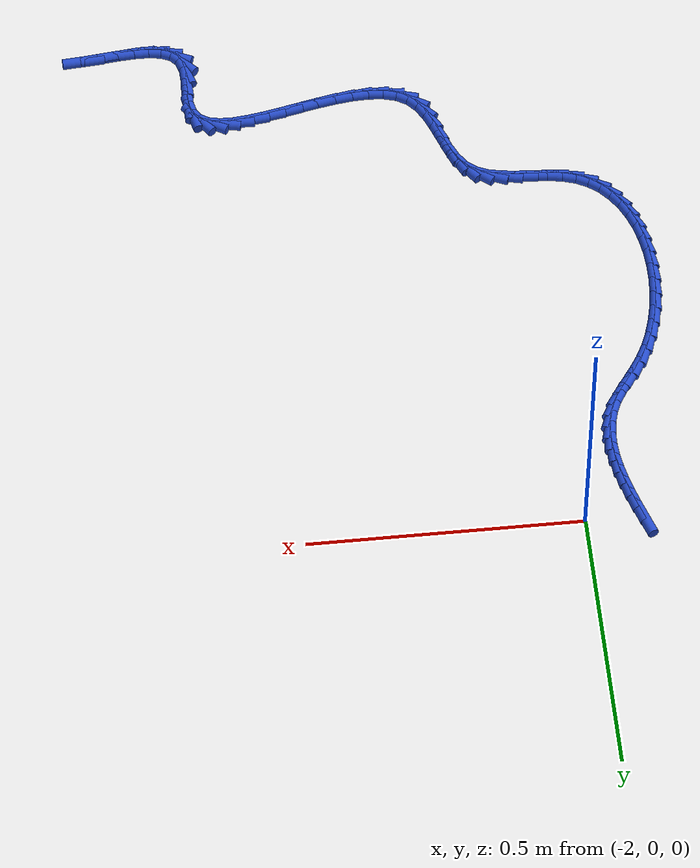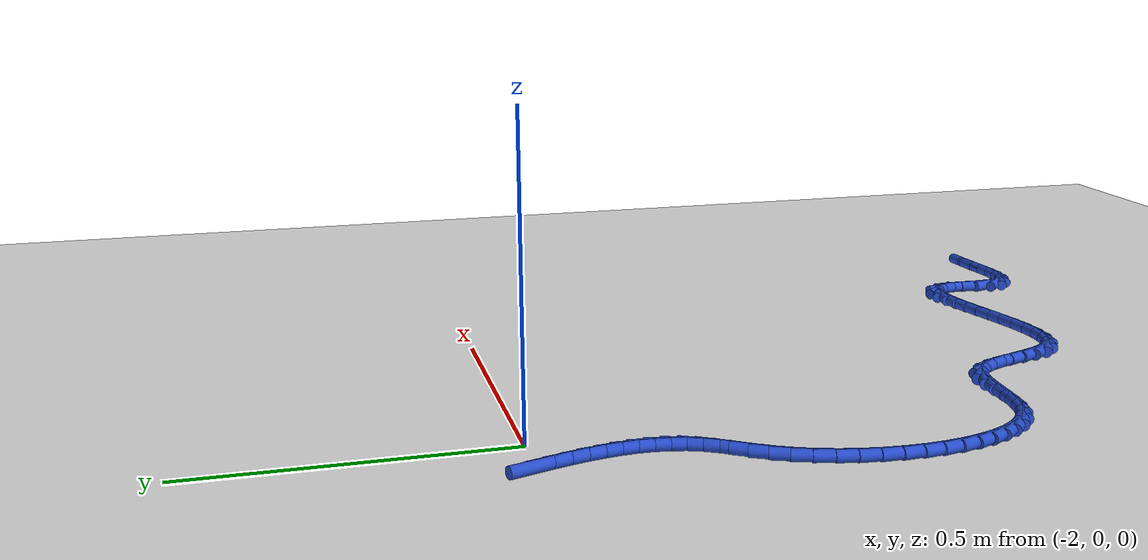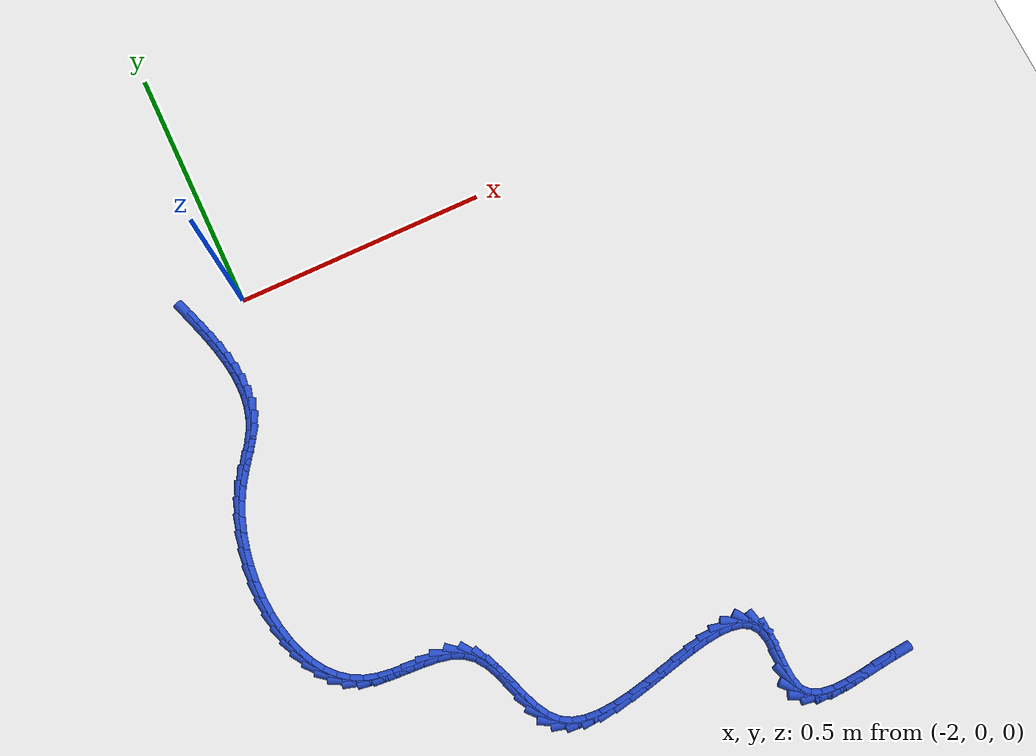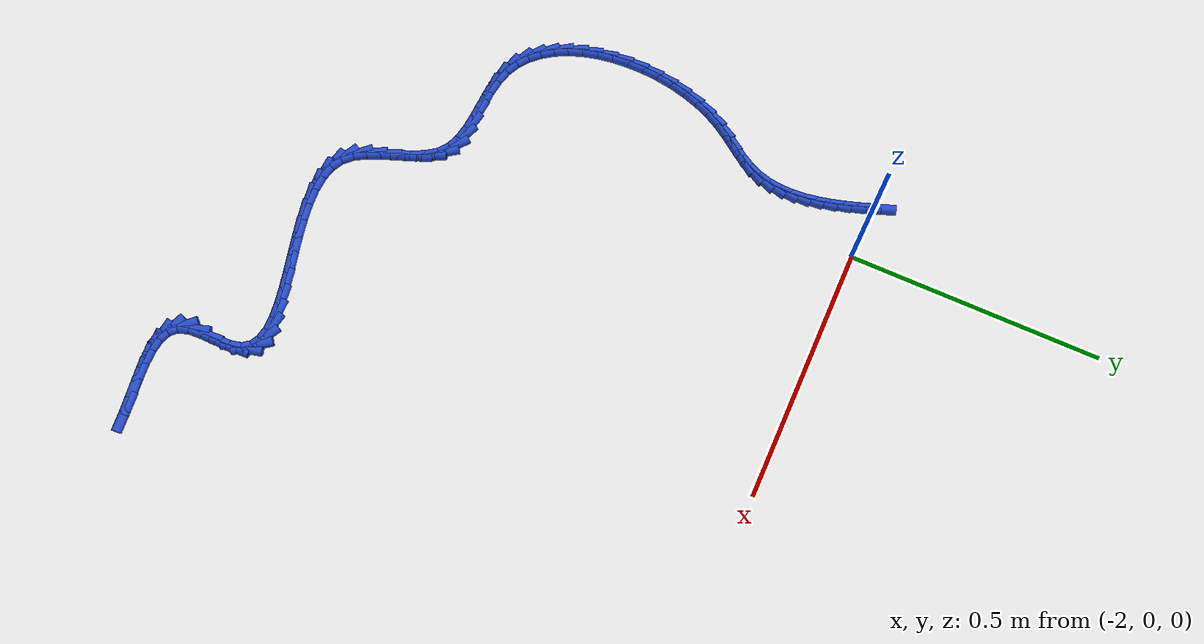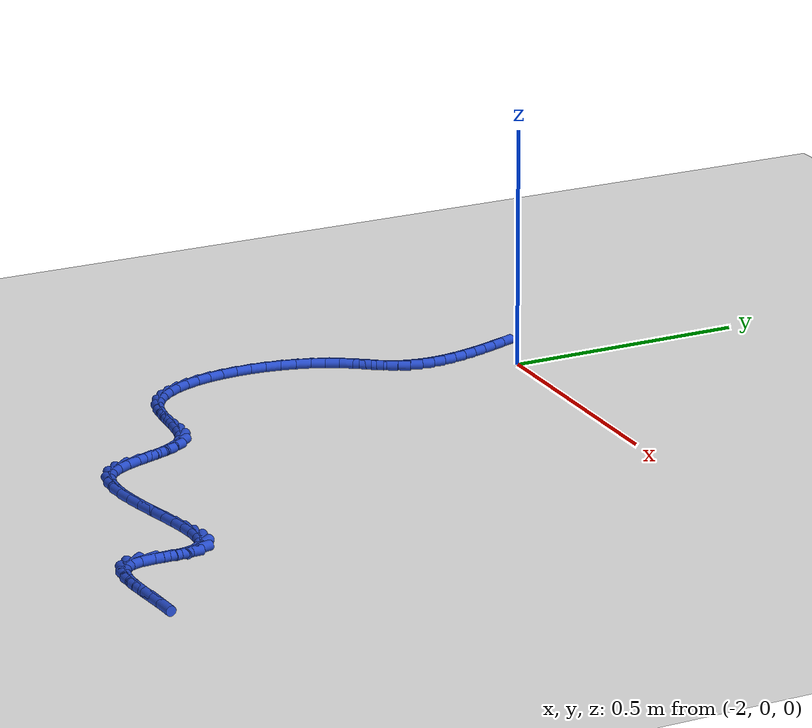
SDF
<sdf version="1.6">
 <world name="default">
  <model name="ground_plane">
   <static>1</static>
   <link name="link">
    <collision name="collision">
     <geometry><plane><normal>0 0 1</normal><size>100 100</size></plane></geometry>
     <surface><friction><ode><mu>100</mu><mu2>50</mu2></ode></friction></surface>
    </collision>
    <visual name="visual">
     <cast_shadows>0</cast_shadows>
     <geometry><plane><normal>0 0 1</normal><size>100 100</size></plane></geometry>
     <material>
      <script><uri>file://media/materials/scripts/gazebo.material</uri><name>Gazebo/WhiteGlow</name></script>
     </material>
    </visual>
   </link>
  </model>
  <model name="line">
   <link name="link_147">
    <pose>-2.103485461184262 0.0067950459913509965 0.01 0 1.57 -1.245817069460105</pose>
    <collision name="collision">
     <geometry><cylinder><radius>0.01</radius><length>0.08</length></cylinder></geometry>
    </collision>
    <visual name="visual">
     <material>
      <script><name>Gazebo/Blue</name><uri>file://media/materials/scripts/gazebo.material</uri></script>
     </material>
     <geometry><cylinder><radius>0.01</radius><length>0.08</length></cylinder></geometry>
    </visual>
   </link>
   <link name="link_148">
    <pose>-2.0942054478189482 -0.020748243369155435 0.01 0 1.57 -1.2718352223715492</pose>
    <collision name="collision">
     <geometry><cylinder><radius>0.01</radius><length>0.08</length></cylinder></geometry>
    </collision>
    <visual name="visual">
     <material>
      <script><name>Gazebo/Blue</name><uri>file://media/materials/scripts/gazebo.material</uri></script>
     </material>
     <geometry><cylinder><radius>0.01</radius><length>0.08</length></cylinder></geometry>
    </visual>
   </link>
   <link name="link_149">
    <pose>-2.0858336120348455 -0.04791203873200592 0.01 0 1.57 -1.3085235844850125</pose>
    <collision name="collision">
     <geometry><cylinder><radius>0.01</radius><length>0.08</length></cylinder></geometry>
    </collision>
    <visual name="visual">
     <material>
      <script><name>Gazebo/Blue</name><uri>file://media/materials/scripts/gazebo.material</uri></script>
     </material>
     <geometry><cylinder><radius>0.01</radius><length>0.08</length></cylinder></geometry>
    </visual>
   </link>
   <link name="link_150">
    <pose>-2.0786564714903086 -0.07464686526933204 0.01 0 1.57 -1.357171425639478</pose>
    <collision name="collision">
     <geometry><cylinder><radius>0.01</radius><length>0.08</length></cylinder></geometry>
    </collision>
    <visual name="visual">
     <material>
      <script><name>Gazebo/Blue</name><uri>file://media/materials/scripts/gazebo.material</uri></script>
     </material>
     <geometry><cylinder><radius>0.01</radius><length>0.08</length></cylinder></geometry>
    </visual>
   </link>
   <link name="link_151">
    <pose>-2.0729605438436915 -0.10090324815326539 0.01 0 1.57 -1.4192873323787267</pose>
    <collision name="collision">
     <geometry><cylinder><radius>0.01</radius><length>0.08</length></cylinder></geometry>
    </collision>
    <visual name="visual">
     <material>
      <script><name>Gazebo/Blue</name><uri>file://media/materials/scripts/gazebo.material</uri></script>
     </material>
     <geometry><cylinder><radius>0.01</radius><length>0.08</length></cylinder></geometry>
    </visual>
   </link>
   <link name="link_152">
    <pose>-2.069032346753349 -0.12663171255593683 0.01 0 1.57 -1.4964260268732787</pose>
    <collision name="collision">
     <geometry><cylinder><radius>0.01</radius><length>0.08</length></cylinder></geometry>
    </collision>
    <visual name="visual">
     <material>
      <script><name>Gazebo/Blue</name><uri>file://media/materials/scripts/gazebo.material</uri></script>
     </material>
     <geometry><cylinder><radius>0.01</radius><length>0.08</length></cylinder></geometry>
    </visual>
   </link>
   <link name="link_153">
    <pose>-2.067158397877636 -0.15178278364947959 0.01 0 1.57 1.551763674445263</pose>
    <collision name="collision">
     <geometry><cylinder><radius>0.01</radius><length>0.08</length></cylinder></geometry>
    </collision>
    <visual name="visual">
     <material>
      <script><name>Gazebo/Blue</name><uri>file://media/materials/scripts/gazebo.material</uri></script>
     </material>
     <geometry><cylinder><radius>0.01</radius><length>0.08</length></cylinder></geometry>
    </visual>
   </link>
   <link name="link_154">
    <pose>-2.067625214874906 -0.1763069866060244 0.01 0 1.57 1.4417737452906738</pose>
    <collision name="collision">
     <geometry><cylinder><radius>0.01</radius><length>0.08</length></cylinder></geometry>
    </collision>
    <visual name="visual">
     <material>
      <script><name>Gazebo/Blue</name><uri>file://media/materials/scripts/gazebo.material</uri></script>
     </material>
     <geometry><cylinder><radius>0.01</radius><length>0.08</length></cylinder></geometry>
    </visual>
   </link>
   <link name="link_155">
    <pose>-2.0707193154035135 -0.20015484659770294 0.01 0 1.57 1.3165833986257338</pose>
    <collision name="collision">
     <geometry><cylinder><radius>0.01</radius><length>0.08</length></cylinder></geometry>
    </collision>
    <visual name="visual">
     <material>
      <script><name>Gazebo/Blue</name><uri>file://media/materials/scripts/gazebo.material</uri></script>
     </material>
     <geometry><cylinder><radius>0.01</radius><length>0.08</length></cylinder></geometry>
    </visual>
   </link>
   <link name="link_156">
    <pose>-2.0767272171218143 -0.22327688879664676 0.01 0 1.57 1.1799360997999613</pose>
    <collision name="collision">
     <geometry><cylinder><radius>0.01</radius><length>0.08</length></cylinder></geometry>
    </collision>
    <visual name="visual">
     <material>
      <script><name>Gazebo/Blue</name><uri>file://media/materials/scripts/gazebo.material</uri></script>
     </material>
     <geometry><cylinder><radius>0.01</radius><length>0.08</length></cylinder></geometry>
    </visual>
   </link>
   <link name="link_157">
    <pose>-2.0859354376881614 -0.24562363837498752 0.01 0 1.57 1.0484567349800722</pose>
    <collision name="collision">
     <geometry><cylinder><radius>0.01</radius><length>0.08</length></cylinder></geometry>
    </collision>
    <visual name="visual">
     <material>
      <script><name>Gazebo/Blue</name><uri>file://media/materials/scripts/gazebo.material</uri></script>
     </material>
     <geometry><cylinder><radius>0.01</radius><length>0.08</length></cylinder></geometry>
    </visual>
   </link>
   <link name="link_158">
    <pose>-2.0983946030037415 -0.26726643643316855 0.01 0 1.57 0.9725468085613582</pose>
    <collision name="collision">
     <geometry><cylinder><radius>0.01</radius><length>0.08</length></cylinder></geometry>
    </collision>
    <visual name="visual">
     <material>
      <script><name>Gazebo/Blue</name><uri>file://media/materials/scripts/gazebo.material</uri></script>
     </material>
     <geometry><cylinder><radius>0.01</radius><length>0.08</length></cylinder></geometry>
    </visual>
   </link>
   <link name="link_159">
    <pose>-2.113087334901353 -0.28882362030631203 0.01 0 1.57 0.9589980313045741</pose>
    <collision name="collision">
     <geometry><cylinder><radius>0.01</radius><length>0.08</length></cylinder></geometry>
    </collision>
    <visual name="visual">
     <material>
      <script><name>Gazebo/Blue</name><uri>file://media/materials/scripts/gazebo.material</uri></script>
     </material>
     <geometry><cylinder><radius>0.01</radius><length>0.08</length></cylinder></geometry>
    </visual>
   </link>
   <link name="link_160">
    <pose>-2.1286941486754767 -0.3110682562709591 0.01 0 1.57 1.0005832384589313</pose>
    <collision name="collision">
     <geometry><cylinder><radius>0.01</radius><length>0.08</length></cylinder></geometry>
    </collision>
    <visual name="visual">
     <material>
      <script><name>Gazebo/Blue</name><uri>file://media/materials/scripts/gazebo.material</uri></script>
     </material>
     <geometry><cylinder><radius>0.01</radius><length>0.08</length></cylinder></geometry>
    </visual>
   </link>
   <link name="link_161">
    <pose>-2.1438955408295697 -0.33477342022778706 0.01 0 1.57 1.0881705349579678</pose>
    <collision name="collision">
     <geometry><cylinder><radius>0.01</radius><length>0.08</length></cylinder></geometry>
    </collision>
    <visual name="visual">
     <material>
      <script><name>Gazebo/Blue</name><uri>file://media/materials/scripts/gazebo.material</uri></script>
     </material>
     <geometry><cylinder><radius>0.01</radius><length>0.08</length></cylinder></geometry>
    </visual>
   </link>
   <link name="link_162">
    <pose>-2.1574482748450445 -0.36063974166752943 0.01 0 1.57 1.183612582332133</pose>
    <collision name="collision">
     <geometry><cylinder><radius>0.01</radius><length>0.08</length></cylinder></geometry>
    </collision>
    <visual name="visual">
     <material>
      <script><name>Gazebo/Blue</name><uri>file://media/materials/scripts/gazebo.material</uri></script>
     </material>
     <geometry><cylinder><radius>0.01</radius><length>0.08</length></cylinder></geometry>
    </visual>
   </link>
   <link name="link_163">
    <pose>-2.1688684984520044 -0.3886465069247734 0.01 0 1.57 1.2693158005675775</pose>
    <collision name="collision">
     <geometry><cylinder><radius>0.01</radius><length>0.08</length></cylinder></geometry>
    </collision>
    <visual name="visual">
     <material>
      <script><name>Gazebo/Blue</name><uri>file://media/materials/scripts/gazebo.material</uri></script>
     </material>
     <geometry><cylinder><radius>0.01</radius><length>0.08</length></cylinder></geometry>
    </visual>
   </link>
   <link name="link_164">
    <pose>-2.178107945005088 -0.4183592372214941 0.01 0 1.57 1.348092796050872</pose>
    <collision name="collision">
     <geometry><cylinder><radius>0.01</radius><length>0.08</length></cylinder></geometry>
    </collision>
    <visual name="visual">
     <material>
      <script><name>Gazebo/Blue</name><uri>file://media/materials/scripts/gazebo.material</uri></script>
     </material>
     <geometry><cylinder><radius>0.01</radius><length>0.08</length></cylinder></geometry>
    </visual>
   </link>
   <link name="link_165">
    <pose>-2.1851235150589337 -0.4493385454287736 0.01 0 1.57 1.4225946193340542</pose>
    <collision name="collision">
     <geometry><cylinder><radius>0.01</radius><length>0.08</length></cylinder></geometry>
    </collision>
    <visual name="visual">
     <material>
      <script><name>Gazebo/Blue</name><uri>file://media/materials/scripts/gazebo.material</uri></script>
     </material>
     <geometry><cylinder><radius>0.01</radius><length>0.08</length></cylinder></geometry>
    </visual>
   </link>
   <link name="link_166">
    <pose>-2.1898721091681783 -0.481145044417694 0.01 0 1.57 1.4951968838428826</pose>
    <collision name="collision">
     <geometry><cylinder><radius>0.01</radius><length>0.08</length></cylinder></geometry>
    </collision>
    <visual name="visual">
     <material>
      <script><name>Gazebo/Blue</name><uri>file://media/materials/scripts/gazebo.material</uri></script>
     </material>
     <geometry><cylinder><radius>0.01</radius><length>0.08</length></cylinder></geometry>
    </visual>
   </link>
   <link name="link_167">
    <pose>-2.19231062788746 -0.5133393470593371 0.01 0 1.57 1.5681411785803305</pose>
    <collision name="collision">
     <geometry><cylinder><radius>0.01</radius><length>0.08</length></cylinder></geometry>
    </collision>
    <visual name="visual">
     <material>
      <script><name>Gazebo/Blue</name><uri>file://media/materials/scripts/gazebo.material</uri></script>
     </material>
     <geometry><cylinder><radius>0.01</radius><length>0.08</length></cylinder></geometry>
    </visual>
   </link>
   <link name="link_168">
    <pose>-2.192395971771416 -0.5454820662247851 0.01 0 1.57 -1.497914500388636</pose>
    <collision name="collision">
     <geometry><cylinder><radius>0.01</radius><length>0.08</length></cylinder></geometry>
    </collision>
    <visual name="visual">
     <material>
      <script><name>Gazebo/Blue</name><uri>file://media/materials/scripts/gazebo.material</uri></script>
     </material>
     <geometry><cylinder><radius>0.01</radius><length>0.08</length></cylinder></geometry>
    </visual>
   </link>
   <link name="link_169">
    <pose>-2.190085041374685 -0.5771338147851188 0.01 0 1.57 -1.4173859612219537</pose>
    <collision name="collision">
     <geometry><cylinder><radius>0.01</radius><length>0.08</length></cylinder></geometry>
    </collision>
    <visual name="visual">
     <material>
      <script><name>Gazebo/Blue</name><uri>file://media/materials/scripts/gazebo.material</uri></script>
     </material>
     <geometry><cylinder><radius>0.01</radius><length>0.08</length></cylinder></geometry>
    </visual>
   </link>
   <link name="link_170">
    <pose>-2.185334737251903 -0.6078552056114225 0.01 0 1.57 -1.329191679604233</pose>
    <collision name="collision">
     <geometry><cylinder><radius>0.01</radius><length>0.08</length></cylinder></geometry>
    </collision>
    <visual name="visual">
     <material>
      <script><name>Gazebo/Blue</name><uri>file://media/materials/scripts/gazebo.material</uri></script>
     </material>
     <geometry><cylinder><radius>0.01</radius><length>0.08</length></cylinder></geometry>
    </visual>
   </link>
   <link name="link_171">
    <pose>-2.178101959957711 -0.6372068515747772 0.01 0 1.57 -1.2302947199583176</pose>
    <collision name="collision">
     <geometry><cylinder><radius>0.01</radius><length>0.08</length></cylinder></geometry>
    </collision>
    <visual name="visual">
     <material>
      <script><name>Gazebo/Blue</name><uri>file://media/materials/scripts/gazebo.material</uri></script>
     </material>
     <geometry><cylinder><radius>0.01</radius><length>0.08</length></cylinder></geometry>
    </visual>
   </link>
   <link name="link_172">
    <pose>-2.168343610046743 -0.6647493655462646 0.01 0 1.57 -1.117320039684281</pose>
    <collision name="collision">
     <geometry><cylinder><radius>0.01</radius><length>0.08</length></cylinder></geometry>
    </collision>
    <visual name="visual">
     <material>
      <script><name>Gazebo/Blue</name><uri>file://media/materials/scripts/gazebo.material</uri></script>
     </material>
     <geometry><cylinder><radius>0.01</radius><length>0.08</length></cylinder></geometry>
    </visual>
   </link>
   <link name="link_173">
    <pose>-2.156016588073639 -0.690043360396967 0.01 0 1.57 -0.9868450169674536</pose>
    <collision name="collision">
     <geometry><cylinder><radius>0.01</radius><length>0.08</length></cylinder></geometry>
    </collision>
    <visual name="visual">
     <material>
      <script><name>Gazebo/Blue</name><uri>file://media/materials/scripts/gazebo.material</uri></script>
     </material>
     <geometry><cylinder><radius>0.01</radius><length>0.08</length></cylinder></geometry>
    </visual>
   </link>
   <link name="link_174">
    <pose>-2.141077794593036 -0.7126494489979662 0.01 0 1.57 -0.8362043014490649</pose>
    <collision name="collision">
     <geometry><cylinder><radius>0.01</radius><length>0.08</length></cylinder></geometry>
    </collision>
    <visual name="visual">
     <material>
      <script><name>Gazebo/Blue</name><uri>file://media/materials/scripts/gazebo.material</uri></script>
     </material>
     <geometry><cylinder><radius>0.01</radius><length>0.08</length></cylinder></geometry>
    </visual>
   </link>
   <link name="link_175">
    <pose>-2.1234841301595715 -0.7321282442203444 0.01 0 1.57 -0.6650144092641113</pose>
    <collision name="collision">
     <geometry><cylinder><radius>0.01</radius><length>0.08</length></cylinder></geometry>
    </collision>
    <visual name="visual">
     <material>
      <script><name>Gazebo/Blue</name><uri>file://media/materials/scripts/gazebo.material</uri></script>
     </material>
     <geometry><cylinder><radius>0.01</radius><length>0.08</length></cylinder></geometry>
    </visual>
   </link>
   <link name="link_176">
    <pose>-2.1031924953278835 -0.7480403589351834 0.01 0 1.57 -0.4770911651251326</pose>
    <collision name="collision">
     <geometry><cylinder><radius>0.01</radius><length>0.08</length></cylinder></geometry>
    </collision>
    <visual name="visual">
     <material>
      <script><name>Gazebo/Blue</name><uri>file://media/materials/scripts/gazebo.material</uri></script>
     </material>
     <geometry><cylinder><radius>0.01</radius><length>0.08</length></cylinder></geometry>
    </visual>
   </link>
   <link name="link_177">
    <pose>-2.0801597906526097 -0.7599464060135652 0.01 0 1.57 -0.28748073289124054</pose>
    <collision name="collision">
     <geometry><cylinder><radius>0.01</radius><length>0.08</length></cylinder></geometry>
    </collision>
    <visual name="visual">
     <material>
      <script><name>Gazebo/Blue</name><uri>file://media/materials/scripts/gazebo.material</uri></script>
     </material>
     <geometry><cylinder><radius>0.01</radius><length>0.08</length></cylinder></geometry>
    </visual>
   </link>
   <link name="link_178">
    <pose>-2.054424249654553 -0.7675556651650438 0.01 0 1.57 -0.15106167689402641</pose>
    <collision name="collision">
     <geometry><cylinder><radius>0.01</radius><length>0.08</length></cylinder></geometry>
    </collision>
    <visual name="visual">
     <material>
      <script><name>Gazebo/Blue</name><uri>file://media/materials/scripts/gazebo.material</uri></script>
     </material>
     <geometry><cylinder><radius>0.01</radius><length>0.08</length></cylinder></geometry>
    </visual>
   </link>
   <link name="link_179">
    <pose>-2.0266813232167933 -0.7717787300564298 0.01 0 1.57 -0.08086319813274952</pose>
    <collision name="collision">
     <geometry><cylinder><radius>0.01</radius><length>0.08</length></cylinder></geometry>
    </collision>
    <visual name="visual">
     <material>
      <script><name>Gazebo/Blue</name><uri>file://media/materials/scripts/gazebo.material</uri></script>
     </material>
     <geometry><cylinder><radius>0.01</radius><length>0.08</length></cylinder></geometry>
    </visual>
   </link>
   <link name="link_180">
    <pose>-1.9979445160629505 -0.7741075583593946 0.01 0 1.57 -0.06712315040261009</pose>
    <collision name="collision">
     <geometry><cylinder><radius>0.01</radius><length>0.08</length></cylinder></geometry>
    </collision>
    <visual name="visual">
     <material>
      <script><name>Gazebo/Blue</name><uri>file://media/materials/scripts/gazebo.material</uri></script>
     </material>
     <geometry><cylinder><radius>0.01</radius><length>0.08</length></cylinder></geometry>
    </visual>
   </link>
   <link name="link_181">
    <pose>-1.9692294112047624 -0.7760379066052645 0.01 0 1.57 -0.10895492450649621</pose>
    <collision name="collision">
     <geometry><cylinder><radius>0.01</radius><length>0.08</length></cylinder></geometry>
    </collision>
    <visual name="visual">
     <material>
      <script><name>Gazebo/Blue</name><uri>file://media/materials/scripts/gazebo.material</uri></script>
     </material>
     <geometry><cylinder><radius>0.01</radius><length>0.08</length></cylinder></geometry>
    </visual>
   </link>
   <link name="link_182">
    <pose>-1.9415515916539636 -0.7790655313253656 0.01 0 1.57 -0.2159237001455601</pose>
    <collision name="collision">
     <geometry><cylinder><radius>0.01</radius><length>0.08</length></cylinder></geometry>
    </collision>
    <visual name="visual">
     <material>
      <script><name>Gazebo/Blue</name><uri>file://media/materials/scripts/gazebo.material</uri></script>
     </material>
     <geometry><cylinder><radius>0.01</radius><length>0.08</length></cylinder></geometry>
    </visual>
   </link>
   <link name="link_183">
    <pose>-1.9159266404222923 -0.7846861890510246 0.01 0 1.57 -0.40647784550037175</pose>
    <collision name="collision">
     <geometry><cylinder><radius>0.01</radius><length>0.08</length></cylinder></geometry>
    </collision>
    <visual name="visual">
     <material>
      <script><name>Gazebo/Blue</name><uri>file://media/materials/scripts/gazebo.material</uri></script>
     </material>
     <geometry><cylinder><radius>0.01</radius><length>0.08</length></cylinder></geometry>
    </visual>
   </link>
   <link name="link_184">
    <pose>-1.8933701405214856 -0.7943956363135672 0.01 0 1.57 -0.6893223239225637</pose>
    <collision name="collision">
     <geometry><cylinder><radius>0.01</radius><length>0.08</length></cylinder></geometry>
    </collision>
    <visual name="visual">
     <material>
      <script><name>Gazebo/Blue</name><uri>file://media/materials/scripts/gazebo.material</uri></script>
     </material>
     <geometry><cylinder><radius>0.01</radius><length>0.08</length></cylinder></geometry>
    </visual>
   </link>
   <link name="link_185">
    <pose>-1.8748667790765612 -0.8096460595718953 0.01 0 1.57 -0.9638499894112131</pose>
    <collision name="collision">
     <geometry><cylinder><radius>0.01</radius><length>0.08</length></cylinder></geometry>
    </collision>
    <visual name="visual">
     <material>
      <script><name>Gazebo/Blue</name><uri>file://media/materials/scripts/gazebo.material</uri></script>
     </material>
     <geometry><cylinder><radius>0.01</radius><length>0.08</length></cylinder></geometry>
    </visual>
   </link>
   <link name="link_186">
    <pose>-1.8604008383169035 -0.8304788518625422 0.01 0 1.57 -1.1315939220142777</pose>
    <collision name="collision">
     <geometry><cylinder><radius>0.01</radius><length>0.08</length></cylinder></geometry>
    </collision>
    <visual name="visual">
     <material>
      <script><name>Gazebo/Blue</name><uri>file://media/materials/scripts/gazebo.material</uri></script>
     </material>
     <geometry><cylinder><radius>0.01</radius><length>0.08</length></cylinder></geometry>
    </visual>
   </link>
   <link name="link_187">
    <pose>-1.8487625035553248 -0.85525146396735 0.01 0 1.57 -1.2127936973110756</pose>
    <collision name="collision">
     <geometry><cylinder><radius>0.01</radius><length>0.08</length></cylinder></geometry>
    </collision>
    <visual name="visual">
     <material>
      <script><name>Gazebo/Blue</name><uri>file://media/materials/scripts/gazebo.material</uri></script>
     </material>
     <geometry><cylinder><radius>0.01</radius><length>0.08</length></cylinder></geometry>
    </visual>
   </link>
   <link name="link_188">
    <pose>-1.8386719450320923 -0.8822226098424558 0.01 0 1.57 -1.2269074790065286</pose>
    <collision name="collision">
     <geometry><cylinder><radius>0.01</radius><length>0.08</length></cylinder></geometry>
    </collision>
    <visual name="visual">
     <material>
      <script><name>Gazebo/Blue</name><uri>file://media/materials/scripts/gazebo.material</uri></script>
     </material>
     <geometry><cylinder><radius>0.01</radius><length>0.08</length></cylinder></geometry>
    </visual>
   </link>
   <link name="link_189">
    <pose>-1.8288493329874724 -0.909651003443997 0.01 0 1.57 -1.1779291606659594</pose>
    <collision name="collision">
     <geometry><cylinder><radius>0.01</radius><length>0.08</length></cylinder></geometry>
    </collision>
    <visual name="visual">
     <material>
      <script><name>Gazebo/Blue</name><uri>file://media/materials/scripts/gazebo.material</uri></script>
     </material>
     <geometry><cylinder><radius>0.01</radius><length>0.08</length></cylinder></geometry>
    </visual>
   </link>
   <link name="link_190">
    <pose>-1.8180148376617324 -0.9357953587281109 0.01 0 1.57 -1.054415300757807</pose>
    <collision name="collision">
     <geometry><cylinder><radius>0.01</radius><length>0.08</length></cylinder></geometry>
    </collision>
    <visual name="visual">
     <material>
      <script><name>Gazebo/Blue</name><uri>file://media/materials/scripts/gazebo.material</uri></script>
     </material>
     <geometry><cylinder><radius>0.01</radius><length>0.08</length></cylinder></geometry>
    </visual>
   </link>
   <link name="link_191">
    <pose>-1.8048886292951383 -0.9589143896509341 0.01 0 1.57 -0.8325731055666589</pose>
    <collision name="collision">
     <geometry><cylinder><radius>0.01</radius><length>0.08</length></cylinder></geometry>
    </collision>
    <visual name="visual">
     <material>
      <script><name>Gazebo/Blue</name><uri>file://media/materials/scripts/gazebo.material</uri></script>
     </material>
     <geometry><cylinder><radius>0.01</radius><length>0.08</length></cylinder></geometry>
    </visual>
   </link>
   <link name="link_192">
    <pose>-1.7881908991387694 -0.97726683762702 0.01 0 1.57 -0.527577848040542</pose>
    <collision name="collision">
     <geometry><cylinder><radius>0.01</radius><length>0.08</length></cylinder></geometry>
    </collision>
    <visual name="visual">
     <material>
      <script><name>Gazebo/Blue</name><uri>file://media/materials/scripts/gazebo.material</uri></script>
     </material>
     <geometry><cylinder><radius>0.01</radius><length>0.08</length></cylinder></geometry>
    </visual>
   </link>
   <link name="link_193">
    <pose>-1.7670183009352596 -0.9896034318822837 0.01 0 1.57 -0.26411495307919686</pose>
    <collision name="collision">
     <geometry><cylinder><radius>0.01</radius><length>0.08</length></cylinder></geometry>
    </collision>
    <visual name="visual">
     <material>
      <script><name>Gazebo/Blue</name><uri>file://media/materials/scripts/gazebo.material</uri></script>
     </material>
     <geometry><cylinder><radius>0.01</radius><length>0.08</length></cylinder></geometry>
    </visual>
   </link>
   <link name="link_194">
    <pose>-1.7418044121971394 -0.9964220881864931 0.01 0 1.57 -0.0764959007449809</pose>
    <collision name="collision">
     <geometry><cylinder><radius>0.01</radius><length>0.08</length></cylinder></geometry>
    </collision>
    <visual name="visual">
     <material>
      <script><name>Gazebo/Blue</name><uri>file://media/materials/scripts/gazebo.material</uri></script>
     </material>
     <geometry><cylinder><radius>0.01</radius><length>0.08</length></cylinder></geometry>
    </visual>
   </link>
   <link name="link_195">
    <pose>-1.7132794537158906 -0.9986083967280931 0.01 0 1.57 0.0501238231531635</pose>
    <collision name="collision">
     <geometry><cylinder><radius>0.01</radius><length>0.08</length></cylinder></geometry>
    </collision>
    <visual name="visual">
     <material>
      <script><name>Gazebo/Blue</name><uri>file://media/materials/scripts/gazebo.material</uri></script>
     </material>
     <geometry><cylinder><radius>0.01</radius><length>0.08</length></cylinder></geometry>
    </visual>
   </link>
   <link name="link_196">
    <pose>-1.6821736462829953 -0.9970479476955278 0.01 0 1.57 0.13336906680097688</pose>
    <collision name="collision">
     <geometry><cylinder><radius>0.01</radius><length>0.08</length></cylinder></geometry>
    </collision>
    <visual name="visual">
     <material>
      <script><name>Gazebo/Blue</name><uri>file://media/materials/scripts/gazebo.material</uri></script>
     </material>
     <geometry><cylinder><radius>0.01</radius><length>0.08</length></cylinder></geometry>
    </visual>
   </link>
   <link name="link_197">
    <pose>-1.6492172106899363 -0.9926263312772423 0.01 0 1.57 0.18556865217841662</pose>
    <collision name="collision">
     <geometry><cylinder><radius>0.01</radius><length>0.08</length></cylinder></geometry>
    </collision>
    <visual name="visual">
     <material>
      <script><name>Gazebo/Blue</name><uri>file://media/materials/scripts/gazebo.material</uri></script>
     </material>
     <geometry><cylinder><radius>0.01</radius><length>0.08</length></cylinder></geometry>
    </visual>
   </link>
   <link name="link_198">
    <pose>-1.6151403677281957 -0.9862291376616812 0.01 0 1.57 0.21390409859290715</pose>
    <collision name="collision">
     <geometry><cylinder><radius>0.01</radius><length>0.08</length></cylinder></geometry>
    </collision>
    <visual name="visual">
     <material>
      <script><name>Gazebo/Blue</name><uri>file://media/materials/scripts/gazebo.material</uri></script>
     </material>
     <geometry><cylinder><radius>0.01</radius><length>0.08</length></cylinder></geometry>
    </visual>
   </link>
   <link name="link_199">
    <pose>-1.580673338189256 -0.9787419570372888 0.01 0 1.57 0.22167708502522349</pose>
    <collision name="collision">
     <geometry><cylinder><radius>0.01</radius><length>0.08</length></cylinder></geometry>
    </collision>
    <visual name="visual">
     <material>
      <script><name>Gazebo/Blue</name><uri>file://media/materials/scripts/gazebo.material</uri></script>
     </material>
     <geometry><cylinder><radius>0.01</radius><length>0.08</length></cylinder></geometry>
    </visual>
   </link>
   <link name="link_200">
    <pose>-1.5465463428645991 -0.9710503795925102 0.01 0 1.57 0.20897512673204077</pose>
    <collision name="collision">
     <geometry><cylinder><radius>0.01</radius><length>0.08</length></cylinder></geometry>
    </collision>
    <visual name="visual">
     <material>
      <script><name>Gazebo/Blue</name><uri>file://media/materials/scripts/gazebo.material</uri></script>
     </material>
     <geometry><cylinder><radius>0.01</radius><length>0.08</length></cylinder></geometry>
    </visual>
   </link>
   <link name="link_201">
    <pose>-1.513489602545709 -0.96403999551579 0.01 0 1.57 0.17243080566387067</pose>
    <collision name="collision">
     <geometry><cylinder><radius>0.01</radius><length>0.08</length></cylinder></geometry>
    </collision>
    <visual name="visual">
     <material>
      <script><name>Gazebo/Blue</name><uri>file://media/materials/scripts/gazebo.material</uri></script>
     </material>
     <geometry><cylinder><radius>0.01</radius><length>0.08</length></cylinder></geometry>
    </visual>
   </link>
   <link name="link_202">
    <pose>-1.4822333380240653 -0.958596394995572 0.01 0 1.57 0.1037572170284192</pose>
    <collision name="collision">
     <geometry><cylinder><radius>0.01</radius><length>0.08</length></cylinder></geometry>
    </collision>
    <visual name="visual">
     <material>
      <script><name>Gazebo/Blue</name><uri>file://media/materials/scripts/gazebo.material</uri></script>
     </material>
     <geometry><cylinder><radius>0.01</radius><length>0.08</length></cylinder></geometry>
    </visual>
   </link>
   <link name="link_203">
    <pose>-1.4535077700911516 -0.9556051682203018 0.01 0 1.57 -0.013615569970670493</pose>
    <collision name="collision">
     <geometry><cylinder><radius>0.01</radius><length>0.08</length></cylinder></geometry>
    </collision>
    <visual name="visual">
     <material>
      <script><name>Gazebo/Blue</name><uri>file://media/materials/scripts/gazebo.material</uri></script>
     </material>
     <geometry><cylinder><radius>0.01</radius><length>0.08</length></cylinder></geometry>
    </visual>
   </link>
   <link name="link_204">
    <pose>-1.42804311953845 -0.9559519053784233 0.01 0 1.57 -0.20970484026091454</pose>
    <collision name="collision">
     <geometry><cylinder><radius>0.01</radius><length>0.08</length></cylinder></geometry>
    </collision>
    <visual name="visual">
     <material>
      <script><name>Gazebo/Blue</name><uri>file://media/materials/scripts/gazebo.material</uri></script>
     </material>
     <geometry><cylinder><radius>0.01</radius><length>0.08</length></cylinder></geometry>
    </visual>
   </link>
   <link name="link_205">
    <pose>-1.4065696071574427 -0.9605221966583815 0.01 0 1.57 -0.523937858347387</pose>
    <collision name="collision">
     <geometry><cylinder><radius>0.01</radius><length>0.08</length></cylinder></geometry>
    </collision>
    <visual name="visual">
     <material>
      <script><name>Gazebo/Blue</name><uri>file://media/materials/scripts/gazebo.material</uri></script>
     </material>
     <geometry><cylinder><radius>0.01</radius><length>0.08</length></cylinder></geometry>
    </visual>
   </link>
   <link name="link_206">
    <pose>-1.3898174537396126 -0.9702016322486211 0.01 0 1.57 -0.9461361118896549</pose>
    <collision name="collision">
     <geometry><cylinder><radius>0.01</radius><length>0.08</length></cylinder></geometry>
    </collision>
    <visual name="visual">
     <material>
      <script><name>Gazebo/Blue</name><uri>file://media/materials/scripts/gazebo.material</uri></script>
     </material>
     <geometry><cylinder><radius>0.01</radius><length>0.08</length></cylinder></geometry>
    </visual>
   </link>
   <link name="link_207">
    <pose>-1.3785168800764414 -0.9858758023375864 0.01 0 1.57 -1.340888887219716</pose>
    <collision name="collision">
     <geometry><cylinder><radius>0.01</radius><length>0.08</length></cylinder></geometry>
    </collision>
    <visual name="visual">
     <material>
      <script><name>Gazebo/Blue</name><uri>file://media/materials/scripts/gazebo.material</uri></script>
     </material>
     <geometry><cylinder><radius>0.01</radius><length>0.08</length></cylinder></geometry>
    </visual>
   </link>
   <link name="link_208">
    <pose>-1.3732711362236785 -1.008289130971769 0.01 0 1.57 -1.5452931490489166</pose>
    <collision name="collision">
     <geometry><cylinder><radius>0.01</radius><length>0.08</length></cylinder></geometry>
    </collision>
    <visual name="visual">
     <material>
      <script><name>Gazebo/Blue</name><uri>file://media/materials/scripts/gazebo.material</uri></script>
     </material>
     <geometry><cylinder><radius>0.01</radius><length>0.08</length></cylinder></geometry>
    </visual>
   </link>
   <link name="link_209">
    <pose>-1.3725684868825083 -1.0358346001817635 0.01 0 1.57 1.5507839430428594</pose>
    <collision name="collision">
     <geometry><cylinder><radius>0.01</radius><length>0.08</length></cylinder></geometry>
    </collision>
    <visual name="visual">
     <material>
      <script><name>Gazebo/Blue</name><uri>file://media/materials/scripts/gazebo.material</uri></script>
     </material>
     <geometry><cylinder><radius>0.01</radius><length>0.08</length></cylinder></geometry>
    </visual>
   </link>
   <link name="link_210">
    <pose>-1.3731515204099631 -1.0649643479668174 0.01 0 1.57 -1.517690527548595</pose>
    <collision name="collision">
     <geometry><cylinder><radius>0.01</radius><length>0.08</length></cylinder></geometry>
    </collision>
    <visual name="visual">
     <material>
      <script><name>Gazebo/Blue</name><uri>file://media/materials/scripts/gazebo.material</uri></script>
     </material>
     <geometry><cylinder><radius>0.01</radius><length>0.08</length></cylinder></geometry>
    </visual>
   </link>
   <link name="link_211">
    <pose>-1.371710569987991 -1.0920724149904324 0.01 0 1.57 -1.2685840385002065</pose>
    <collision name="collision">
     <geometry><cylinder><radius>0.01</radius><length>0.08</length></cylinder></geometry>
    </collision>
    <visual name="visual">
     <material>
      <script><name>Gazebo/Blue</name><uri>file://media/materials/scripts/gazebo.material</uri></script>
     </material>
     <geometry><cylinder><radius>0.01</radius><length>0.08</length></cylinder></geometry>
    </visual>
   </link>
   <link name="link_212">
    <pose>-1.3649936994709335 -1.1136172883745463 0.01 0 1.57 -0.8265696739670862</pose>
    <collision name="collision">
     <geometry><cylinder><radius>0.01</radius><length>0.08</length></cylinder></geometry>
    </collision>
    <visual name="visual">
     <material>
      <script><name>Gazebo/Blue</name><uri>file://media/materials/scripts/gazebo.material</uri></script>
     </material>
     <geometry><cylinder><radius>0.01</radius><length>0.08</length></cylinder></geometry>
    </visual>
   </link>
   <link name="link_213">
    <pose>-1.3516172953899157 -1.1281431191480191 0.01 0 1.57 -0.41869702157785293</pose>
    <collision name="collision">
     <geometry><cylinder><radius>0.01</radius><length>0.08</length></cylinder></geometry>
    </collision>
    <visual name="visual">
     <material>
      <script><name>Gazebo/Blue</name><uri>file://media/materials/scripts/gazebo.material</uri></script>
     </material>
     <geometry><cylinder><radius>0.01</radius><length>0.08</length></cylinder></geometry>
    </visual>
   </link>
   <link name="link_214">
    <pose>-1.3324272318744994 -1.136682901339251 0.01 0 1.57 -0.15411718751180123</pose>
    <collision name="collision">
     <geometry><cylinder><radius>0.01</radius><length>0.08</length></cylinder></geometry>
    </collision>
    <visual name="visual">
     <material>
      <script><name>Gazebo/Blue</name><uri>file://media/materials/scripts/gazebo.material</uri></script>
     </material>
     <geometry><cylinder><radius>0.01</radius><length>0.08</length></cylinder></geometry>
    </visual>
   </link>
   <link name="link_215">
    <pose>-1.308400054685941 -1.140415501587015 0.01 0 1.57 -0.0037394366811283556</pose>
    <collision name="collision">
     <geometry><cylinder><radius>0.01</radius><length>0.08</length></cylinder></geometry>
    </collision>
    <visual name="visual">
     <material>
      <script><name>Gazebo/Blue</name><uri>file://media/materials/scripts/gazebo.material</uri></script>
     </material>
     <geometry><cylinder><radius>0.01</radius><length>0.08</length></cylinder></geometry>
    </visual>
   </link>
   <link name="link_216">
    <pose>-1.2805123095854956 -1.1405197865300836 0.01 0 1.57 0.07606449993904739</pose>
    <collision name="collision">
     <geometry><cylinder><radius>0.01</radius><length>0.08</length></cylinder></geometry>
    </collision>
    <visual name="visual">
     <material>
      <script><name>Gazebo/Blue</name><uri>file://media/materials/scripts/gazebo.material</uri></script>
     </material>
     <geometry><cylinder><radius>0.01</radius><length>0.08</length></cylinder></geometry>
    </visual>
   </link>
   <link name="link_217">
    <pose>-1.2497405423344168 -1.1381746228072287 0.01 0 1.57 0.11019528461742341</pose>
    <collision name="collision">
     <geometry><cylinder><radius>0.01</radius><length>0.08</length></cylinder></geometry>
    </collision>
    <visual name="visual">
     <material>
      <script><name>Gazebo/Blue</name><uri>file://media/materials/scripts/gazebo.material</uri></script>
     </material>
     <geometry><cylinder><radius>0.01</radius><length>0.08</length></cylinder></geometry>
    </visual>
   </link>
   <link name="link_218">
    <pose>-1.21706129869396 -1.1345588770572226 0.01 0 1.57 0.10986354141454246</pose>
    <collision name="collision">
     <geometry><cylinder><radius>0.01</radius><length>0.08</length></cylinder></geometry>
    </collision>
    <visual name="visual">
     <material>
      <script><name>Gazebo/Blue</name><uri>file://media/materials/scripts/gazebo.material</uri></script>
     </material>
     <geometry><cylinder><radius>0.01</radius><length>0.08</length></cylinder></geometry>
    </visual>
   </link>
   <link name="link_219">
    <pose>-1.1834511244253805 -1.1308514159188383 0.01 0 1.57 0.07790973907438677</pose>
    <collision name="collision">
     <geometry><cylinder><radius>0.01</radius><length>0.08</length></cylinder></geometry>
    </collision>
    <visual name="visual">
     <material>
      <script><name>Gazebo/Blue</name><uri>file://media/materials/scripts/gazebo.material</uri></script>
     </material>
     <geometry><cylinder><radius>0.01</radius><length>0.08</length></cylinder></geometry>
    </visual>
   </link>
  </model>
 </world>
</sdf>
